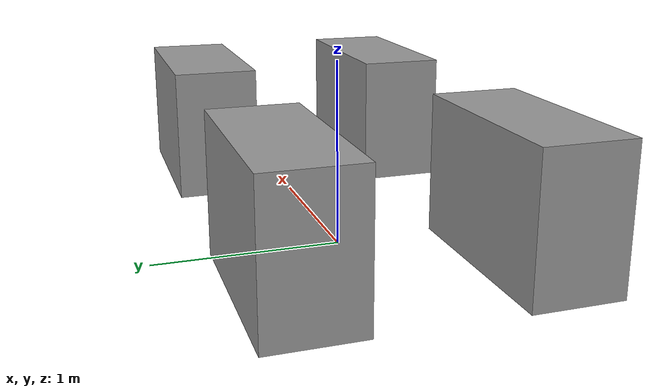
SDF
<?xml version='1.0'?>
<sdf version='1.7'>
  <model name='map_box'>
    <link name='link'>
      <inertial>
        <mass>0.925319</mass>
        <inertia>
          <ixx>0.108231</ixx>
          <ixy>0</ixy>
          <ixz>0</ixz>
          <iyy>0.240705</iyy>
          <iyz>0</iyz>
          <izz>0.194716</izz>
        </inertia>
        <pose>0 0 0 0 -0 0</pose>
      </inertial>
      <self_collide>0</self_collide>
      <enable_wind>0</enable_wind>
      <kinematic>0</kinematic>
      <pose>0.53033 0.178429 -2e-06 0 -0 0</pose>
      <visual name='visual'>
        <geometry>
          <box>
            <size>1.45657 0.635287 1</size>
          </box>
        </geometry>
        <material>
          <script>
            <name>Gazebo/Grey</name>
            <uri>file://media/materials/scripts/gazebo.material</uri>
          </script>
          <shader type='pixel'/>
        </material>
        <pose>0 0 0 0 -0 0</pose>
        <transparency>0</transparency>
        <cast_shadows>1</cast_shadows>
      </visual>
      <collision name='collision'>
        <laser_retro>0</laser_retro>
        <max_contacts>10</max_contacts>
        <pose>0 0 0 0 -0 0</pose>
        <geometry>
          <box>
            <size>1.45657 0.635287 1</size>
          </box>
        </geometry>
        <surface>
          <friction>
            <ode>
              <mu>1</mu>
              <mu2>1</mu2>
              <fdir1>0 0 0</fdir1>
              <slip1>0</slip1>
              <slip2>0</slip2>
            </ode>
            <torsional>
              <coefficient>1</coefficient>
              <patch_radius>0</patch_radius>
              <surface_radius>0</surface_radius>
              <use_patch_radius>1</use_patch_radius>
              <ode>
                <slip>0</slip>
              </ode>
            </torsional>
          </friction>
          <bounce>
            <restitution_coefficient>0</restitution_coefficient>
            <threshold>1e+06</threshold>
          </bounce>
          <contact>
            <collide_without_contact>0</collide_without_contact>
            <collide_without_contact_bitmask>1</collide_without_contact_bitmask>
            <collide_bitmask>1</collide_bitmask>
            <ode>
              <soft_cfm>0</soft_cfm>
              <soft_erp>0.2</soft_erp>
              <kp>1e+13</kp>
              <kd>1</kd>
              <max_vel>0.01</max_vel>
              <min_depth>0</min_depth>
            </ode>
            <bullet>
              <split_impulse>1</split_impulse>
              <split_impulse_penetration_threshold>-0.01</split_impulse_penetration_threshold>
              <soft_cfm>0</soft_cfm>
              <soft_erp>0.2</soft_erp>
              <kp>1e+13</kp>
              <kd>1</kd>
            </bullet>
          </contact>
        </surface>
      </collision>
    </link>
    <link name='link_clone'>
      <inertial>
        <mass>0.925319</mass>
        <inertia>
          <ixx>0.108231</ixx>
          <ixy>0</ixy>
          <ixz>0</ixz>
          <iyy>0.240705</iyy>
          <iyz>0</iyz>
          <izz>0.194716</izz>
        </inertia>
        <pose>0 0 0 0 -0 0</pose>
      </inertial>
      <self_collide>0</self_collide>
      <enable_wind>0</enable_wind>
      <kinematic>0</kinematic>
      <pose>0.512818 -1.41807 1.2e-05 -1e-05 0 0</pose>
      <visual name='visual'>
        <geometry>
          <box>
            <size>1.45657 0.635287 1</size>
          </box>
        </geometry>
        <material>
          <script>
            <name>Gazebo/Grey</name>
            <uri>file://media/materials/scripts/gazebo.material</uri>
          </script>
          <shader type='pixel'/>
        </material>
        <pose>0 0 0 0 -0 0</pose>
        <transparency>0</transparency>
        <cast_shadows>1</cast_shadows>
      </visual>
      <collision name='collision'>
        <laser_retro>0</laser_retro>
        <max_contacts>10</max_contacts>
        <pose>0 0 0 0 -0 0</pose>
        <geometry>
          <box>
            <size>1.45657 0.635287 1</size>
          </box>
        </geometry>
        <surface>
          <friction>
            <ode>
              <mu>1</mu>
              <mu2>1</mu2>
              <fdir1>0 0 0</fdir1>
              <slip1>0</slip1>
              <slip2>0</slip2>
            </ode>
            <torsional>
              <coefficient>1</coefficient>
              <patch_radius>0</patch_radius>
              <surface_radius>0</surface_radius>
              <use_patch_radius>1</use_patch_radius>
              <ode>
                <slip>0</slip>
              </ode>
            </torsional>
          </friction>
          <bounce>
            <restitution_coefficient>0</restitution_coefficient>
            <threshold>1e+06</threshold>
          </bounce>
          <contact>
            <collide_without_contact>0</collide_without_contact>
            <collide_without_contact_bitmask>1</collide_without_contact_bitmask>
            <collide_bitmask>1</collide_bitmask>
            <ode>
              <soft_cfm>0</soft_cfm>
              <soft_erp>0.2</soft_erp>
              <kp>1e+13</kp>
              <kd>1</kd>
              <max_vel>0.01</max_vel>
              <min_depth>0</min_depth>
            </ode>
            <bullet>
              <split_impulse>1</split_impulse>
              <split_impulse_penetration_threshold>-0.01</split_impulse_penetration_threshold>
              <soft_cfm>0</soft_cfm>
              <soft_erp>0.2</soft_erp>
              <kp>1e+13</kp>
              <kd>1</kd>
            </bullet>
          </contact>
        </surface>
      </collision>
    </link>
    <link name='link_clone_clone'>
      <inertial>
        <mass>0.925319</mass>
        <inertia>
          <ixx>0.108231</ixx>
          <ixy>0</ixy>
          <ixz>0</ixz>
          <iyy>0.240705</iyy>
          <iyz>0</iyz>
          <izz>0.194716</izz>
        </inertia>
        <pose>0 0 0 0 -0 0</pose>
      </inertial>
      <self_collide>0</self_collide>
      <enable_wind>0</enable_wind>
      <kinematic>0</kinematic>
      <pose>3.21709 0.196869 1e-05 -2e-05 0 0</pose>
      <visual name='visual'>
        <geometry>
          <box>
            <size>1.45657 0.635287 1</size>
          </box>
        </geometry>
        <material>
          <script>
            <name>Gazebo/Grey</name>
            <uri>file://media/materials/scripts/gazebo.material</uri>
          </script>
          <shader type='pixel'/>
        </material>
        <pose>0 0 0 0 -0 0</pose>
        <transparency>0</transparency>
        <cast_shadows>1</cast_shadows>
      </visual>
      <collision name='collision'>
        <laser_retro>0</laser_retro>
        <max_contacts>10</max_contacts>
        <pose>0 0 0 0 -0 0</pose>
        <geometry>
          <box>
            <size>1.45657 0.635287 1</size>
          </box>
        </geometry>
        <surface>
          <friction>
            <ode>
              <mu>1</mu>
              <mu2>1</mu2>
              <fdir1>0 0 0</fdir1>
              <slip1>0</slip1>
              <slip2>0</slip2>
            </ode>
            <torsional>
              <coefficient>1</coefficient>
              <patch_radius>0</patch_radius>
              <surface_radius>0</surface_radius>
              <use_patch_radius>1</use_patch_radius>
              <ode>
                <slip>0</slip>
              </ode>
            </torsional>
          </friction>
          <bounce>
            <restitution_coefficient>0</restitution_coefficient>
            <threshold>1e+06</threshold>
          </bounce>
          <contact>
            <collide_without_contact>0</collide_without_contact>
            <collide_without_contact_bitmask>1</collide_without_contact_bitmask>
            <collide_bitmask>1</collide_bitmask>
            <ode>
              <soft_cfm>0</soft_cfm>
              <soft_erp>0.2</soft_erp>
              <kp>1e+13</kp>
              <kd>1</kd>
              <max_vel>0.01</max_vel>
              <min_depth>0</min_depth>
            </ode>
            <bullet>
              <split_impulse>1</split_impulse>
              <split_impulse_penetration_threshold>-0.01</split_impulse_penetration_threshold>
              <soft_cfm>0</soft_cfm>
              <soft_erp>0.2</soft_erp>
              <kp>1e+13</kp>
              <kd>1</kd>
            </bullet>
          </contact>
        </surface>
      </collision>
    </link>
    <link name='link_clone_clone_clone'>
      <inertial>
        <mass>0.925319</mass>
        <inertia>
          <ixx>0.108231</ixx>
          <ixy>0</ixy>
          <ixz>0</ixz>
          <iyy>0.240705</iyy>
          <iyz>0</iyz>
          <izz>0.194716</izz>
        </inertia>
        <pose>0 0 0 0 -0 0</pose>
      </inertial>
      <self_collide>0</self_collide>
      <enable_wind>0</enable_wind>
      <kinematic>0</kinematic>
      <pose>3.2248 -1.37647 2.3e-05 -3e-05 0 0</pose>
      <visual name='visual'>
        <geometry>
          <box>
            <size>1.45657 0.635287 1</size>
          </box>
        </geometry>
        <material>
          <script>
            <name>Gazebo/Grey</name>
            <uri>file://media/materials/scripts/gazebo.material</uri>
          </script>
          <shader type='pixel'/>
        </material>
        <pose>0 0 0 0 -0 0</pose>
        <transparency>0</transparency>
        <cast_shadows>1</cast_shadows>
      </visual>
      <collision name='collision'>
        <laser_retro>0</laser_retro>
        <max_contacts>10</max_contacts>
        <pose>0 0 0 0 -0 0</pose>
        <geometry>
          <box>
            <size>1.45657 0.635287 1</size>
          </box>
        </geometry>
        <surface>
          <friction>
            <ode>
              <mu>1</mu>
              <mu2>1</mu2>
              <fdir1>0 0 0</fdir1>
              <slip1>0</slip1>
              <slip2>0</slip2>
            </ode>
            <torsional>
              <coefficient>1</coefficient>
              <patch_radius>0</patch_radius>
              <surface_radius>0</surface_radius>
              <use_patch_radius>1</use_patch_radius>
              <ode>
                <slip>0</slip>
              </ode>
            </torsional>
          </friction>
          <bounce>
            <restitution_coefficient>0</restitution_coefficient>
            <threshold>1e+06</threshold>
          </bounce>
          <contact>
            <collide_without_contact>0</collide_without_contact>
            <collide_without_contact_bitmask>1</collide_without_contact_bitmask>
            <collide_bitmask>1</collide_bitmask>
            <ode>
              <soft_cfm>0</soft_cfm>
              <soft_erp>0.2</soft_erp>
              <kp>1e+13</kp>
              <kd>1</kd>
              <max_vel>0.01</max_vel>
              <min_depth>0</min_depth>
            </ode>
            <bullet>
              <split_impulse>1</split_impulse>
              <split_impulse_penetration_threshold>-0.01</split_impulse_penetration_threshold>
              <soft_cfm>0</soft_cfm>
              <soft_erp>0.2</soft_erp>
              <kp>1e+13</kp>
              <kd>1</kd>
            </bullet>
          </contact>
        </surface>
      </collision>
    </link>
    <static>0</static>
    <allow_auto_disable>1</allow_auto_disable>
  </model>
</sdf>
